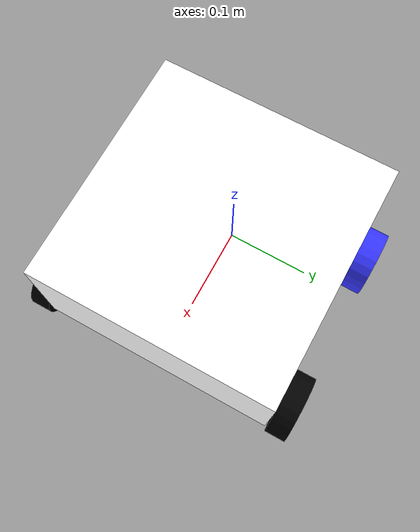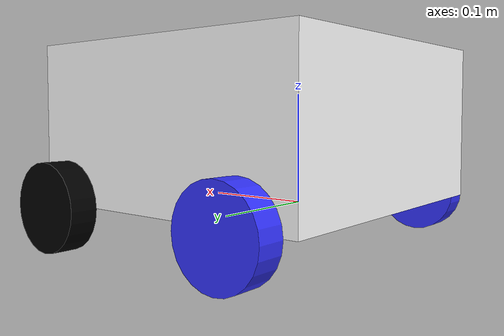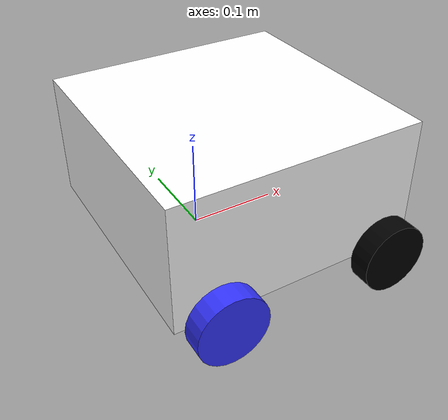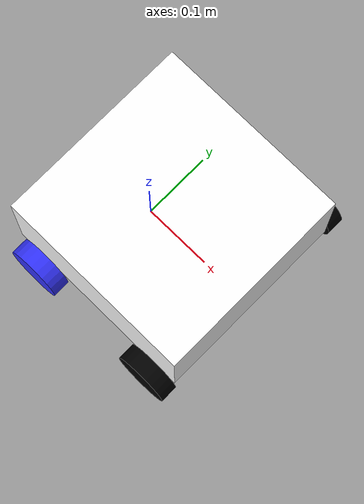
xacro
<?xml version="1.0"?>
<robot xmlns:xacro="http://www.ros.org/wiki/xacro" >

    <xacro:include filename="inertial_macros.xacro"/>

    <material name="white">
        <color rgba="1 1 1 1" />
    </material>

    <material name="orange">
        <color rgba="1 0.3 0.1 1"/>
    </material>

    <material name="blue">
        <color rgba="0.2 0.2 1 1"/>
    </material>

    <material name="black">
        <color rgba="0 0 0 1"/>
    </material>

    <material name="red">
        <color rgba="1 0 0 1"/>
    </material>

    <!-- BASE LINK -->

    <link name="base_link">

    </link>

    <!-- BASE FOOTPRINT LINK -->

    <joint name="base_footprint_joint" type="fixed">
        <parent link="base_link"/>
        <child link="base_footprint"/>
        <origin xyz="0 0 0" rpy="0 0 0" />
    </joint>

    <link name="base_footprint">

    </link>

    <!-- CHASSIS LINK -->

    <joint name="chassis_joint" type="fixed">
        <parent link="base_link"/>
        <child link="chassis"/>
        <origin xyz="-0.1 0 0"/>
    </joint>

    <link name="chassis">
        <visual>
            <origin xyz="0.1425 0 0.0725"/>
            <geometry>
                <box size="0.285 0.285 0.145"/>
            </geometry>
            <material name="white"/>
        </visual>
        <collision>
            <origin xyz="0.1425 0 0.0725"/>
            <geometry>
                <box size="0.285 0.285 0.145"/>
            </geometry>
        </collision>
        <xacro:inertial_box mass="0.5" x="0.285" y="0.285" z="0.145">
            <origin xyz="0.15 0 0.075" rpy="0 0 0"/>
        </xacro:inertial_box>
    </link>

    <gazebo reference="chassis">
        <material>Gazebo/White</material>
    </gazebo>

    <!-- LEFT WHEEL LINK -->

    <joint name="left_wheel_joint" type="continuous">
        <parent link="base_link"/>
        <child link="left_wheel"/>
        <origin xyz="-0.05 0.1575 0" rpy="-${pi/2} 0 0" />
        <axis xyz="0 0 1"/>
    </joint>

    <link name="left_wheel">
        <visual>
            <geometry>
                <cylinder radius="0.04" length="0.025"/>
            </geometry>
            <material name="blue"/>
        </visual>
        <collision>
            <geometry>
                <sphere radius="0.04"/>
            </geometry>
        </collision>
        <xacro:inertial_cylinder mass="0.1" length="0.025" radius="0.05">
            <origin xyz="0 0 0" rpy="0 0 0"/>
        </xacro:inertial_cylinder>
    </link>

    <gazebo reference="left_wheel">
        <material>Gazebo/Blue</material>
    </gazebo>

    <!-- LEFT WHEEL LINK -->

    <joint name="left_wheel_forward_joint" type="fixed">
        <parent link="base_link"/>
        <child link="left_wheel_forward"/>
        <origin xyz="0.15 0.1575 0" rpy="-${pi/2} 0 0" />
        <axis xyz="0 0 1"/>
    </joint>

    <link name="left_wheel_forward">
        <visual>
            <geometry>
                <cylinder radius="0.04" length="0.025"/>
            </geometry>
            <material name="black"/>
        </visual>
        <collision>
            <geometry>
                <sphere radius="0.04"/>
            </geometry>
        </collision>
        <xacro:inertial_cylinder mass="0.1" length="0.025" radius="0.04">
            <origin xyz="0 0 0" rpy="0 0 0"/>
        </xacro:inertial_cylinder>
    </link>

    <gazebo reference="left_wheel_forward">
        <material>Gazebo/Black</material>
        <mu1 value="0.001"/>
        <mu2 value="0.001"/>
    </gazebo>

    <!-- RIGHT WHEEL LINK -->

    <joint name="right_wheel_joint" type="continuous">
        <parent link="base_link"/>
        <child link="right_wheel"/>
        <origin xyz="-0.05 -0.1575 0" rpy="${pi/2} 0 0" />
        <axis xyz="0 0 -1"/>
    </joint>

    <link name="right_wheel">
        <visual>
            <geometry>
                <cylinder radius="0.04" length="0.025"/>
            </geometry>
            <material name="blue"/>
        </visual>
        <collision>
            <geometry>
                <sphere radius="0.04"/>
            </geometry>
        </collision>
        <xacro:inertial_cylinder mass="0.1" length="0.025" radius="0.04">
            <origin xyz="0 0 0" rpy="0 0 0"/>
        </xacro:inertial_cylinder>
    </link>

    <gazebo reference="right_wheel">
        <material>Gazebo/Blue</material>
    </gazebo>

    <!-- RIGHT WHEEL LINK -->

    <joint name="right_wheel_forward_joint" type="fixed">
        <parent link="base_link"/>
        <child link="right_wheel_forward"/>
        <origin xyz="0.15 -0.1575 0" rpy="${pi/2} 0 0" />
        <axis xyz="0 0 -1"/>
    </joint>

    <link name="right_wheel_forward">
        <visual>
            <geometry>
                <cylinder radius="0.04" length="0.025"/>
            </geometry>
            <material name="black"/>
        </visual>
        <collision>
            <geometry>
                <sphere radius="0.04"/>
            </geometry>
        </collision>
        <xacro:inertial_cylinder mass="0.1" length="0.025" radius="0.04">
            <origin xyz="0 0 0" rpy="0 0 0"/>
        </xacro:inertial_cylinder>
    </link>

    <gazebo reference="right_wheel_forward">
        <material>Gazebo/Black</material>
        <mu1 value="0.001"/>
        <mu2 value="0.001"/>
    </gazebo>

</robot>
